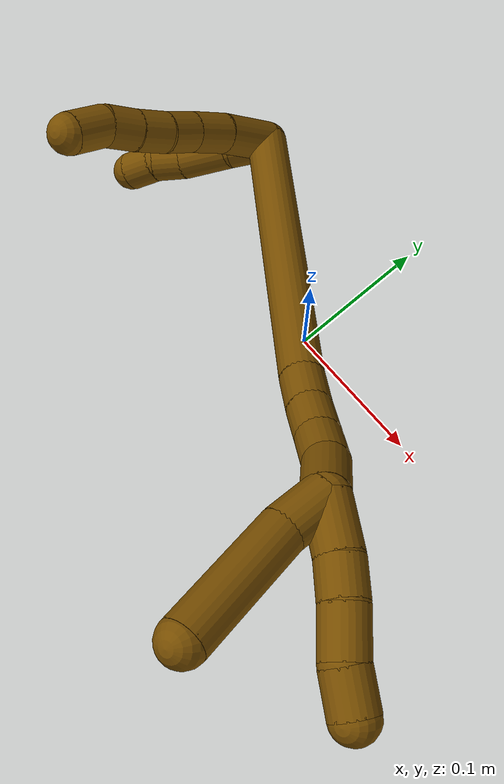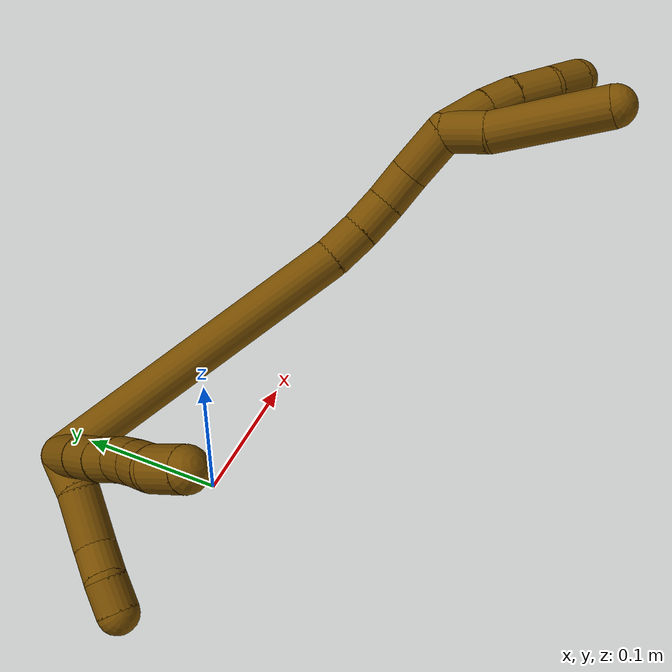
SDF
<sdf version="1.7">
 <world name="default">
  <model name="12">
   <static>0</static>
   <link name="12">
    <collision name="collision-cylinder-e_1_2_8">
     <pose>-0.005442 -0.000972 0.017811 0.054517 -0.296129 -0.008134</pose>
     <geometry><cylinder><radius>0.0125</radius><length>0.037299</length></cylinder></geometry>
     <surface>
      <friction><ode><mu>1.16</mu><mu2>1.16</mu2><slip1>0</slip1><slip2>0</slip2></ode></friction>
      <contact><ode><kp>1e+06</kp><kd>1</kd><max_vel>0</max_vel><min_depth>0.001</min_depth></ode></contact>
     </surface>
    </collision>
    <visual name="visual-cylinder-e_1_2_8">
     <pose>-0.005442 -0.000972 0.017811 0.054517 -0.296129 -0.008134</pose>
     <geometry><cylinder><radius>0.0125</radius><length>0.037299</length></cylinder></geometry>
     <material><ambient>0.466667 0.301961 0 1</ambient></material>
    </visual>
    <collision name="collision-cylinder-e_2_8_9">
     <pose>-0.014445 -0.003933 0.047606 0.164456 -0.285077 -0.023654</pose>
     <geometry><cylinder><radius>0.0125</radius><length>0.025316</length></cylinder></geometry>
     <surface>
      <friction><ode><mu>1.16</mu><mu2>1.16</mu2><slip1>0</slip1><slip2>0</slip2></ode></friction>
      <contact><ode><kp>1e+06</kp><kd>1</kd><max_vel>0</max_vel><min_depth>0.001</min_depth></ode></contact>
     </surface>
    </collision>
    <visual name="visual-cylinder-e_2_8_9">
     <pose>-0.014445 -0.003933 0.047606 0.164456 -0.285077 -0.023654</pose>
     <geometry><cylinder><radius>0.0125</radius><length>0.025316</length></cylinder></geometry>
     <material><ambient>0.466667 0.301961 0 1</ambient></material>
    </visual>
    <collision name="collision-cylinder-e_3_9_10">
     <pose>-0.020049 -0.007757 0.069635 0.180764 -0.197566 -0.017963</pose>
     <geometry><cylinder><radius>0.0125</radius><length>0.020828</length></cylinder></geometry>
     <surface>
      <friction><ode><mu>1.16</mu><mu2>1.16</mu2><slip1>0</slip1><slip2>0</slip2></ode></friction>
      <contact><ode><kp>1e+06</kp><kd>1</kd><max_vel>0</max_vel><min_depth>0.001</min_depth></ode></contact>
     </surface>
    </collision>
    <visual name="visual-cylinder-e_3_9_10">
     <pose>-0.020049 -0.007757 0.069635 0.180764 -0.197566 -0.017963</pose>
     <geometry><cylinder><radius>0.0125</radius><length>0.020828</length></cylinder></geometry>
     <material><ambient>0.466667 0.301961 0 1</ambient></material>
    </visual>
    <collision name="collision-cylinder-e_4_10_11">
     <pose>-0.025448 -0.011088 0.08951 0.150886 -0.325442 -0.024817</pose>
     <geometry><cylinder><radius>0.0125</radius><length>0.020987</length></cylinder></geometry>
     <surface>
      <friction><ode><mu>1.16</mu><mu2>1.16</mu2><slip1>0</slip1><slip2>0</slip2></ode></friction>
      <contact><ode><kp>1e+06</kp><kd>1</kd><max_vel>0</max_vel><min_depth>0.001</min_depth></ode></contact>
     </surface>
    </collision>
    <visual name="visual-cylinder-e_4_10_11">
     <pose>-0.025448 -0.011088 0.08951 0.150886 -0.325442 -0.024817</pose>
     <geometry><cylinder><radius>0.0125</radius><length>0.020987</length></cylinder></geometry>
     <material><ambient>0.466667 0.301961 0 1</ambient></material>
    </visual>
    <collision name="collision-cylinder-e_5_11_12">
     <pose>-0.032681 -0.013499 0.108935 0.095313 -0.382545 -0.01847</pose>
     <geometry><cylinder><radius>0.0125</radius><length>0.02078</length></cylinder></geometry>
     <surface>
      <friction><ode><mu>1.16</mu><mu2>1.16</mu2><slip1>0</slip1><slip2>0</slip2></ode></friction>
      <contact><ode><kp>1e+06</kp><kd>1</kd><max_vel>0</max_vel><min_depth>0.001</min_depth></ode></contact>
     </surface>
    </collision>
    <visual name="visual-cylinder-e_5_11_12">
     <pose>-0.032681 -0.013499 0.108935 0.095313 -0.382545 -0.01847</pose>
     <geometry><cylinder><radius>0.0125</radius><length>0.02078</length></cylinder></geometry>
     <material><ambient>0.466667 0.301961 0 1</ambient></material>
    </visual>
    <collision name="collision-cylinder-e_6_12_6">
     <pose>-0.038323 -0.018508 0.130096 0.340027 -0.142709 -0.024539</pose>
     <geometry><cylinder><radius>0.0125</radius><length>0.024789</length></cylinder></geometry>
     <surface>
      <friction><ode><mu>1.16</mu><mu2>1.16</mu2><slip1>0</slip1><slip2>0</slip2></ode></friction>
      <contact><ode><kp>1e+06</kp><kd>1</kd><max_vel>0</max_vel><min_depth>0.001</min_depth></ode></contact>
     </surface>
    </collision>
    <visual name="visual-cylinder-e_6_12_6">
     <pose>-0.038323 -0.018508 0.130096 0.340027 -0.142709 -0.024539</pose>
     <geometry><cylinder><radius>0.0125</radius><length>0.024789</length></cylinder></geometry>
     <material><ambient>0.466667 0.301961 0 1</ambient></material>
    </visual>
    <collision name="collision-cylinder-e_1_2_13">
     <pose>-0.009833 -0.006918 0.003625 1.08817 -0.899543 -0.568342</pose>
     <geometry><cylinder><radius>0.0125</radius><length>0.025116</length></cylinder></geometry>
     <surface>
      <friction><ode><mu>1.16</mu><mu2>1.16</mu2><slip1>0</slip1><slip2>0</slip2></ode></friction>
      <contact><ode><kp>1e+06</kp><kd>1</kd><max_vel>0</max_vel><min_depth>0.001</min_depth></ode></contact>
     </surface>
    </collision>
    <visual name="visual-cylinder-e_1_2_13">
     <pose>-0.009833 -0.006918 0.003625 1.08817 -0.899543 -0.568342</pose>
     <geometry><cylinder><radius>0.0125</radius><length>0.025116</length></cylinder></geometry>
     <material><ambient>0.466667 0.301961 0 1</ambient></material>
    </visual>
    <collision name="collision-cylinder-e_2_13_14">
     <pose>-0.033928 -0.023563 0.008073 1.48641 -0.970583 -0.902552</pose>
     <geometry><cylinder><radius>0.0125</radius><length>0.034565</length></cylinder></geometry>
     <surface>
      <friction><ode><mu>1.16</mu><mu2>1.16</mu2><slip1>0</slip1><slip2>0</slip2></ode></friction>
      <contact><ode><kp>1e+06</kp><kd>1</kd><max_vel>0</max_vel><min_depth>0.001</min_depth></ode></contact>
     </surface>
    </collision>
    <visual name="visual-cylinder-e_2_13_14">
     <pose>-0.033928 -0.023563 0.008073 1.48641 -0.970583 -0.902552</pose>
     <geometry><cylinder><radius>0.0125</radius><length>0.034565</length></cylinder></geometry>
     <material><ambient>0.466667 0.301961 0 1</ambient></material>
    </visual>
    <collision name="collision-cylinder-e_3_14_15">
     <pose>-0.056609 -0.037813 0.011924 0.980672 -0.996884 -0.565526</pose>
     <geometry><cylinder><radius>0.0125</radius><length>0.020051</length></cylinder></geometry>
     <surface>
      <friction><ode><mu>1.16</mu><mu2>1.16</mu2><slip1>0</slip1><slip2>0</slip2></ode></friction>
      <contact><ode><kp>1e+06</kp><kd>1</kd><max_vel>0</max_vel><min_depth>0.001</min_depth></ode></contact>
     </surface>
    </collision>
    <visual name="visual-cylinder-e_3_14_15">
     <pose>-0.056609 -0.037813 0.011924 0.980672 -0.996884 -0.565526</pose>
     <geometry><cylinder><radius>0.0125</radius><length>0.020051</length></cylinder></geometry>
     <material><ambient>0.466667 0.301961 0 1</ambient></material>
    </visual>
    <collision name="collision-cylinder-e_4_15_5">
     <pose>-0.07291 -0.0487 0.015213 1.53005 -0.891024 -0.859731</pose>
     <geometry><cylinder><radius>0.0125</radius><length>0.020269</length></cylinder></geometry>
     <surface>
      <friction><ode><mu>1.16</mu><mu2>1.16</mu2><slip1>0</slip1><slip2>0</slip2></ode></friction>
      <contact><ode><kp>1e+06</kp><kd>1</kd><max_vel>0</max_vel><min_depth>0.001</min_depth></ode></contact>
     </surface>
    </collision>
    <visual name="visual-cylinder-e_4_15_5">
     <pose>-0.07291 -0.0487 0.015213 1.53005 -0.891024 -0.859731</pose>
     <geometry><cylinder><radius>0.0125</radius><length>0.020269</length></cylinder></geometry>
     <material><ambient>0.466667 0.301961 0 1</ambient></material>
    </visual>
    <collision name="collision-cylinder-e_1_2_16">
     <pose>0.068339 -0.043954 0.056734 0.65915 0.760924 0.271917</pose>
     <geometry><cylinder><radius>0.0125</radius><length>0.1982</length></cylinder></geometry>
     <surface>
      <friction><ode><mu>1.16</mu><mu2>1.16</mu2><slip1>0</slip1><slip2>0</slip2></ode></friction>
      <contact><ode><kp>1e+06</kp><kd>1</kd><max_vel>0</max_vel><min_depth>0.001</min_depth></ode></contact>
     </surface>
    </collision>
    <visual name="visual-cylinder-e_1_2_16">
     <pose>0.068339 -0.043954 0.056734 0.65915 0.760924 0.271917</pose>
     <geometry><cylinder><radius>0.0125</radius><length>0.1982</length></cylinder></geometry>
     <material><ambient>0.466667 0.301961 0 1</ambient></material>
    </visual>
    <collision name="collision-cylinder-e_2_16_17">
     <pose>0.145187 -0.091668 0.120781 0.474887 0.802492 0.204634</pose>
     <geometry><cylinder><radius>0.0125</radius><length>0.023668</length></cylinder></geometry>
     <surface>
      <friction><ode><mu>1.16</mu><mu2>1.16</mu2><slip1>0</slip1><slip2>0</slip2></ode></friction>
      <contact><ode><kp>1e+06</kp><kd>1</kd><max_vel>0</max_vel><min_depth>0.001</min_depth></ode></contact>
     </surface>
    </collision>
    <visual name="visual-cylinder-e_2_16_17">
     <pose>0.145187 -0.091668 0.120781 0.474887 0.802492 0.204634</pose>
     <geometry><cylinder><radius>0.0125</radius><length>0.023668</length></cylinder></geometry>
     <material><ambient>0.466667 0.301961 0 1</ambient></material>
    </visual>
    <collision name="collision-cylinder-e_3_17_18">
     <pose>0.162024 -0.098083 0.135381 0.349408 0.820974 0.153331</pose>
     <geometry><cylinder><radius>0.0125</radius><length>0.022758</length></cylinder></geometry>
     <surface>
      <friction><ode><mu>1.16</mu><mu2>1.16</mu2><slip1>0</slip1><slip2>0</slip2></ode></friction>
      <contact><ode><kp>1e+06</kp><kd>1</kd><max_vel>0</max_vel><min_depth>0.001</min_depth></ode></contact>
     </surface>
    </collision>
    <visual name="visual-cylinder-e_3_17_18">
     <pose>0.162024 -0.098083 0.135381 0.349408 0.820974 0.153331</pose>
     <geometry><cylinder><radius>0.0125</radius><length>0.022758</length></cylinder></geometry>
     <material><ambient>0.466667 0.301961 0 1</ambient></material>
    </visual>
    <collision name="collision-cylinder-e_4_18_19">
     <pose>0.178196 -0.102359 0.150693 0.199307 0.764024 0.080294</pose>
     <geometry><cylinder><radius>0.0125</radius><length>0.02268</length></cylinder></geometry>
     <surface>
      <friction><ode><mu>1.16</mu><mu2>1.16</mu2><slip1>0</slip1><slip2>0</slip2></ode></friction>
      <contact><ode><kp>1e+06</kp><kd>1</kd><max_vel>0</max_vel><min_depth>0.001</min_depth></ode></contact>
     </surface>
    </collision>
    <visual name="visual-cylinder-e_4_18_19">
     <pose>0.178196 -0.102359 0.150693 0.199307 0.764024 0.080294</pose>
     <geometry><cylinder><radius>0.0125</radius><length>0.02268</length></cylinder></geometry>
     <material><ambient>0.466667 0.301961 0 1</ambient></material>
    </visual>
    <collision name="collision-cylinder-e_5_19_1">
     <pose>0.194485 -0.105283 0.172657 0.093185 0.542726 0.025944</pose>
     <geometry><cylinder><radius>0.0125</radius><length>0.032694</length></cylinder></geometry>
     <surface>
      <friction><ode><mu>1.16</mu><mu2>1.16</mu2><slip1>0</slip1><slip2>0</slip2></ode></friction>
      <contact><ode><kp>1e+06</kp><kd>1</kd><max_vel>0</max_vel><min_depth>0.001</min_depth></ode></contact>
     </surface>
    </collision>
    <visual name="visual-cylinder-e_5_19_1">
     <pose>0.194485 -0.105283 0.172657 0.093185 0.542726 0.025944</pose>
     <geometry><cylinder><radius>0.0125</radius><length>0.032694</length></cylinder></geometry>
     <material><ambient>0.466667 0.301961 0 1</ambient></material>
    </visual>
    <collision name="collision-cylinder-e_1_1_20">
     <pose>0.213889 -0.115204 0.192185 0.995285 0.817765 0.462363</pose>
     <geometry><cylinder><radius>0.0125</radius><length>0.030047</length></cylinder></geometry>
     <surface>
      <friction><ode><mu>1.16</mu><mu2>1.16</mu2><slip1>0</slip1><slip2>0</slip2></ode></friction>
      <contact><ode><kp>1e+06</kp><kd>1</kd><max_vel>0</max_vel><min_depth>0.001</min_depth></ode></contact>
     </surface>
    </collision>
    <visual name="visual-cylinder-e_1_1_20">
     <pose>0.213889 -0.115204 0.192185 0.995285 0.817765 0.462363</pose>
     <geometry><cylinder><radius>0.0125</radius><length>0.030047</length></cylinder></geometry>
     <material><ambient>0.466667 0.301961 0 1</ambient></material>
    </visual>
    <collision name="collision-cylinder-e_2_20_21">
     <pose>0.231531 -0.130613 0.202019 1.01241 0.695436 0.396587</pose>
     <geometry><cylinder><radius>0.0125</radius><length>0.020855</length></cylinder></geometry>
     <surface>
      <friction><ode><mu>1.16</mu><mu2>1.16</mu2><slip1>0</slip1><slip2>0</slip2></ode></friction>
      <contact><ode><kp>1e+06</kp><kd>1</kd><max_vel>0</max_vel><min_depth>0.001</min_depth></ode></contact>
     </surface>
    </collision>
    <visual name="visual-cylinder-e_2_20_21">
     <pose>0.231531 -0.130613 0.202019 1.01241 0.695436 0.396587</pose>
     <geometry><cylinder><radius>0.0125</radius><length>0.020855</length></cylinder></geometry>
     <material><ambient>0.466667 0.301961 0 1</ambient></material>
    </visual>
    <collision name="collision-cylinder-e_3_21_22">
     <pose>0.245518 -0.147076 0.211216 1.09733 0.591826 0.368481</pose>
     <geometry><cylinder><radius>0.0125</radius><length>0.026191</length></cylinder></geometry>
     <surface>
      <friction><ode><mu>1.16</mu><mu2>1.16</mu2><slip1>0</slip1><slip2>0</slip2></ode></friction>
      <contact><ode><kp>1e+06</kp><kd>1</kd><max_vel>0</max_vel><min_depth>0.001</min_depth></ode></contact>
     </surface>
    </collision>
    <visual name="visual-cylinder-e_3_21_22">
     <pose>0.245518 -0.147076 0.211216 1.09733 0.591826 0.368481</pose>
     <geometry><cylinder><radius>0.0125</radius><length>0.026191</length></cylinder></geometry>
     <material><ambient>0.466667 0.301961 0 1</ambient></material>
    </visual>
    <collision name="collision-cylinder-e_4_22_4">
     <pose>0.260395 -0.165156 0.217951 1.36229 0.722213 0.594123</pose>
     <geometry><cylinder><radius>0.0125</radius><length>0.022907</length></cylinder></geometry>
     <surface>
      <friction><ode><mu>1.16</mu><mu2>1.16</mu2><slip1>0</slip1><slip2>0</slip2></ode></friction>
      <contact><ode><kp>1e+06</kp><kd>1</kd><max_vel>0</max_vel><min_depth>0.001</min_depth></ode></contact>
     </surface>
    </collision>
    <visual name="visual-cylinder-e_4_22_4">
     <pose>0.260395 -0.165156 0.217951 1.36229 0.722213 0.594123</pose>
     <geometry><cylinder><radius>0.0125</radius><length>0.022907</length></cylinder></geometry>
     <material><ambient>0.466667 0.301961 0 1</ambient></material>
    </visual>
    <collision name="collision-cylinder-e_1_1_23">
     <pose>0.200793 -0.114642 0.197734 0.626147 -0.154035 -0.049953</pose>
     <geometry><cylinder><radius>0.0125</radius><length>0.027826</length></cylinder></geometry>
     <surface>
      <friction><ode><mu>1.16</mu><mu2>1.16</mu2><slip1>0</slip1><slip2>0</slip2></ode></friction>
      <contact><ode><kp>1e+06</kp><kd>1</kd><max_vel>0</max_vel><min_depth>0.001</min_depth></ode></contact>
     </surface>
    </collision>
    <visual name="visual-cylinder-e_1_1_23">
     <pose>0.200793 -0.114642 0.197734 0.626147 -0.154035 -0.049953</pose>
     <geometry><cylinder><radius>0.0125</radius><length>0.027826</length></cylinder></geometry>
     <material><ambient>0.466667 0.301961 0 1</ambient></material>
    </visual>
    <collision name="collision-cylinder-e_2_23_3">
     <pose>0.200231 -0.141068 0.239897 0.534591 0.043596 0.01194</pose>
     <geometry><cylinder><radius>0.0125</radius><length>0.072174</length></cylinder></geometry>
     <surface>
      <friction><ode><mu>1.16</mu><mu2>1.16</mu2><slip1>0</slip1><slip2>0</slip2></ode></friction>
      <contact><ode><kp>1e+06</kp><kd>1</kd><max_vel>0</max_vel><min_depth>0.001</min_depth></ode></contact>
     </surface>
    </collision>
    <visual name="visual-cylinder-e_2_23_3">
     <pose>0.200231 -0.141068 0.239897 0.534591 0.043596 0.01194</pose>
     <geometry><cylinder><radius>0.0125</radius><length>0.072174</length></cylinder></geometry>
     <material><ambient>0.466667 0.301961 0 1</ambient></material>
    </visual>
    <collision name="collision-sphere-3">
     <pose>0.201803 -0.159436 0.270919 0 -0 0</pose>
     <geometry><sphere><radius>0.0125</radius></sphere></geometry>
     <surface>
      <friction><ode><mu>1.16</mu><mu2>1.16</mu2><slip1>0</slip1><slip2>0</slip2></ode></friction>
      <contact><ode><kp>1e+06</kp><kd>1</kd><max_vel>0</max_vel><min_depth>0.001</min_depth></ode></contact>
     </surface>
    </collision>
    <visual name="visual-sphere-3">
     <pose>0.201803 -0.159436 0.270919 0 -0 0</pose>
     <geometry><sphere><radius>0.0125</radius></sphere></geometry>
     <material><ambient>0.466667 0.301961 0 1</ambient></material>
    </visual>
    <collision name="collision-sphere-23">
     <pose>0.198658 -0.122699 0.208874 0 -0 0</pose>
     <geometry><sphere><radius>0.0125</radius></sphere></geometry>
     <surface>
      <friction><ode><mu>1.16</mu><mu2>1.16</mu2><slip1>0</slip1><slip2>0</slip2></ode></friction>
      <contact><ode><kp>1e+06</kp><kd>1</kd><max_vel>0</max_vel><min_depth>0.001</min_depth></ode></contact>
     </surface>
    </collision>
    <visual name="visual-sphere-23">
     <pose>0.198658 -0.122699 0.208874 0 -0 0</pose>
     <geometry><sphere><radius>0.0125</radius></sphere></geometry>
     <material><ambient>0.466667 0.301961 0 1</ambient></material>
    </visual>
    <collision name="collision-sphere-4">
     <pose>0.267966 -0.173564 0.21973 0 -0 0</pose>
     <geometry><sphere><radius>0.0125</radius></sphere></geometry>
     <surface>
      <friction><ode><mu>1.16</mu><mu2>1.16</mu2><slip1>0</slip1><slip2>0</slip2></ode></friction>
      <contact><ode><kp>1e+06</kp><kd>1</kd><max_vel>0</max_vel><min_depth>0.001</min_depth></ode></contact>
     </surface>
    </collision>
    <visual name="visual-sphere-4">
     <pose>0.267966 -0.173564 0.21973 0 -0 0</pose>
     <geometry><sphere><radius>0.0125</radius></sphere></geometry>
     <material><ambient>0.466667 0.301961 0 1</ambient></material>
    </visual>
    <collision name="collision-sphere-22">
     <pose>0.252823 -0.156748 0.216172 0 -0 0</pose>
     <geometry><sphere><radius>0.0125</radius></sphere></geometry>
     <surface>
      <friction><ode><mu>1.16</mu><mu2>1.16</mu2><slip1>0</slip1><slip2>0</slip2></ode></friction>
      <contact><ode><kp>1e+06</kp><kd>1</kd><max_vel>0</max_vel><min_depth>0.001</min_depth></ode></contact>
     </surface>
    </collision>
    <visual name="visual-sphere-22">
     <pose>0.252823 -0.156748 0.216172 0 -0 0</pose>
     <geometry><sphere><radius>0.0125</radius></sphere></geometry>
     <material><ambient>0.466667 0.301961 0 1</ambient></material>
    </visual>
    <collision name="collision-sphere-21">
     <pose>0.238212 -0.137403 0.206261 0 -0 0</pose>
     <geometry><sphere><radius>0.0125</radius></sphere></geometry>
     <surface>
      <friction><ode><mu>1.16</mu><mu2>1.16</mu2><slip1>0</slip1><slip2>0</slip2></ode></friction>
      <contact><ode><kp>1e+06</kp><kd>1</kd><max_vel>0</max_vel><min_depth>0.001</min_depth></ode></contact>
     </surface>
    </collision>
    <visual name="visual-sphere-21">
     <pose>0.238212 -0.137403 0.206261 0 -0 0</pose>
     <geometry><sphere><radius>0.0125</radius></sphere></geometry>
     <material><ambient>0.466667 0.301961 0 1</ambient></material>
    </visual>
    <collision name="collision-sphere-20">
     <pose>0.22485 -0.123823 0.197777 0 -0 0</pose>
     <geometry><sphere><radius>0.0125</radius></sphere></geometry>
     <surface>
      <friction><ode><mu>1.16</mu><mu2>1.16</mu2><slip1>0</slip1><slip2>0</slip2></ode></friction>
      <contact><ode><kp>1e+06</kp><kd>1</kd><max_vel>0</max_vel><min_depth>0.001</min_depth></ode></contact>
     </surface>
    </collision>
    <visual name="visual-sphere-20">
     <pose>0.22485 -0.123823 0.197777 0 -0 0</pose>
     <geometry><sphere><radius>0.0125</radius></sphere></geometry>
     <material><ambient>0.466667 0.301961 0 1</ambient></material>
    </visual>
    <collision name="collision-sphere-12">
     <pose>-0.03656 -0.014417 0.11853 0 -0 0</pose>
     <geometry><sphere><radius>0.0125</radius></sphere></geometry>
     <surface>
      <friction><ode><mu>1.16</mu><mu2>1.16</mu2><slip1>0</slip1><slip2>0</slip2></ode></friction>
      <contact><ode><kp>1e+06</kp><kd>1</kd><max_vel>0</max_vel><min_depth>0.001</min_depth></ode></contact>
     </surface>
    </collision>
    <visual name="visual-sphere-12">
     <pose>-0.03656 -0.014417 0.11853 0 -0 0</pose>
     <geometry><sphere><radius>0.0125</radius></sphere></geometry>
     <material><ambient>0.466667 0.301961 0 1</ambient></material>
    </visual>
    <collision name="collision-sphere-11">
     <pose>-0.028803 -0.012582 0.09934 0 -0 0</pose>
     <geometry><sphere><radius>0.0125</radius></sphere></geometry>
     <surface>
      <friction><ode><mu>1.16</mu><mu2>1.16</mu2><slip1>0</slip1><slip2>0</slip2></ode></friction>
      <contact><ode><kp>1e+06</kp><kd>1</kd><max_vel>0</max_vel><min_depth>0.001</min_depth></ode></contact>
     </surface>
    </collision>
    <visual name="visual-sphere-11">
     <pose>-0.028803 -0.012582 0.09934 0 -0 0</pose>
     <geometry><sphere><radius>0.0125</radius></sphere></geometry>
     <material><ambient>0.466667 0.301961 0 1</ambient></material>
    </visual>
    <collision name="collision-sphere-10">
     <pose>-0.022093 -0.009593 0.07968 0 -0 0</pose>
     <geometry><sphere><radius>0.0125</radius></sphere></geometry>
     <surface>
      <friction><ode><mu>1.16</mu><mu2>1.16</mu2><slip1>0</slip1><slip2>0</slip2></ode></friction>
      <contact><ode><kp>1e+06</kp><kd>1</kd><max_vel>0</max_vel><min_depth>0.001</min_depth></ode></contact>
     </surface>
    </collision>
    <visual name="visual-sphere-10">
     <pose>-0.022093 -0.009593 0.07968 0 -0 0</pose>
     <geometry><sphere><radius>0.0125</radius></sphere></geometry>
     <material><ambient>0.466667 0.301961 0 1</ambient></material>
    </visual>
    <collision name="collision-sphere-9">
     <pose>-0.018004 -0.005921 0.05959 0 -0 0</pose>
     <geometry><sphere><radius>0.0125</radius></sphere></geometry>
     <surface>
      <friction><ode><mu>1.16</mu><mu2>1.16</mu2><slip1>0</slip1><slip2>0</slip2></ode></friction>
      <contact><ode><kp>1e+06</kp><kd>1</kd><max_vel>0</max_vel><min_depth>0.001</min_depth></ode></contact>
     </surface>
    </collision>
    <visual name="visual-sphere-9">
     <pose>-0.018004 -0.005921 0.05959 0 -0 0</pose>
     <geometry><sphere><radius>0.0125</radius></sphere></geometry>
     <material><ambient>0.466667 0.301961 0 1</ambient></material>
    </visual>
    <collision name="collision-sphere-2">
     <geometry><sphere><radius>0.0125</radius></sphere></geometry>
     <surface>
      <friction><ode><mu>1.16</mu><mu2>1.16</mu2><slip1>0</slip1><slip2>0</slip2></ode></friction>
      <contact><ode><kp>1e+06</kp><kd>1</kd><max_vel>0</max_vel><min_depth>0.001</min_depth></ode></contact>
     </surface>
    </collision>
    <visual name="visual-sphere-2">
     <geometry><sphere><radius>0.0125</radius></sphere></geometry>
     <material><ambient>0.466667 0.301961 0 1</ambient></material>
    </visual>
    <collision name="collision-sphere-19">
     <pose>0.186042 -0.103981 0.15872 0 -0 0</pose>
     <geometry><sphere><radius>0.0125</radius></sphere></geometry>
     <surface>
      <friction><ode><mu>1.16</mu><mu2>1.16</mu2><slip1>0</slip1><slip2>0</slip2></ode></friction>
      <contact><ode><kp>1e+06</kp><kd>1</kd><max_vel>0</max_vel><min_depth>0.001</min_depth></ode></contact>
     </surface>
    </collision>
    <visual name="visual-sphere-19">
     <pose>0.186042 -0.103981 0.15872 0 -0 0</pose>
     <geometry><sphere><radius>0.0125</radius></sphere></geometry>
     <material><ambient>0.466667 0.301961 0 1</ambient></material>
    </visual>
    <collision name="collision-sphere-8">
     <pose>-0.010885 -0.001944 0.035623 0 -0 0</pose>
     <geometry><sphere><radius>0.0125</radius></sphere></geometry>
     <surface>
      <friction><ode><mu>1.16</mu><mu2>1.16</mu2><slip1>0</slip1><slip2>0</slip2></ode></friction>
      <contact><ode><kp>1e+06</kp><kd>1</kd><max_vel>0</max_vel><min_depth>0.001</min_depth></ode></contact>
     </surface>
    </collision>
    <visual name="visual-sphere-8">
     <pose>-0.010885 -0.001944 0.035623 0 -0 0</pose>
     <geometry><sphere><radius>0.0125</radius></sphere></geometry>
     <material><ambient>0.466667 0.301961 0 1</ambient></material>
    </visual>
    <collision name="collision-sphere-6">
     <pose>-0.040085 -0.0226 0.141662 0 -0 0</pose>
     <geometry><sphere><radius>0.0125</radius></sphere></geometry>
     <surface>
      <friction><ode><mu>1.16</mu><mu2>1.16</mu2><slip1>0</slip1><slip2>0</slip2></ode></friction>
      <contact><ode><kp>1e+06</kp><kd>1</kd><max_vel>0</max_vel><min_depth>0.001</min_depth></ode></contact>
     </surface>
    </collision>
    <visual name="visual-sphere-6">
     <pose>-0.040085 -0.0226 0.141662 0 -0 0</pose>
     <geometry><sphere><radius>0.0125</radius></sphere></geometry>
     <material><ambient>0.466667 0.301961 0 1</ambient></material>
    </visual>
    <collision name="collision-sphere-13">
     <pose>-0.019667 -0.013837 0.00725 0 -0 0</pose>
     <geometry><sphere><radius>0.0125</radius></sphere></geometry>
     <surface>
      <friction><ode><mu>1.16</mu><mu2>1.16</mu2><slip1>0</slip1><slip2>0</slip2></ode></friction>
      <contact><ode><kp>1e+06</kp><kd>1</kd><max_vel>0</max_vel><min_depth>0.001</min_depth></ode></contact>
     </surface>
    </collision>
    <visual name="visual-sphere-13">
     <pose>-0.019667 -0.013837 0.00725 0 -0 0</pose>
     <geometry><sphere><radius>0.0125</radius></sphere></geometry>
     <material><ambient>0.466667 0.301961 0 1</ambient></material>
    </visual>
    <collision name="collision-sphere-14">
     <pose>-0.04819 -0.03329 0.008895 0 -0 0</pose>
     <geometry><sphere><radius>0.0125</radius></sphere></geometry>
     <surface>
      <friction><ode><mu>1.16</mu><mu2>1.16</mu2><slip1>0</slip1><slip2>0</slip2></ode></friction>
      <contact><ode><kp>1e+06</kp><kd>1</kd><max_vel>0</max_vel><min_depth>0.001</min_depth></ode></contact>
     </surface>
    </collision>
    <visual name="visual-sphere-14">
     <pose>-0.04819 -0.03329 0.008895 0 -0 0</pose>
     <geometry><sphere><radius>0.0125</radius></sphere></geometry>
     <material><ambient>0.466667 0.301961 0 1</ambient></material>
    </visual>
    <collision name="collision-sphere-15">
     <pose>-0.065028 -0.042335 0.014953 0 -0 0</pose>
     <geometry><sphere><radius>0.0125</radius></sphere></geometry>
     <surface>
      <friction><ode><mu>1.16</mu><mu2>1.16</mu2><slip1>0</slip1><slip2>0</slip2></ode></friction>
      <contact><ode><kp>1e+06</kp><kd>1</kd><max_vel>0</max_vel><min_depth>0.001</min_depth></ode></contact>
     </surface>
    </collision>
    <visual name="visual-sphere-15">
     <pose>-0.065028 -0.042335 0.014953 0 -0 0</pose>
     <geometry><sphere><radius>0.0125</radius></sphere></geometry>
     <material><ambient>0.466667 0.301961 0 1</ambient></material>
    </visual>
    <collision name="collision-sphere-5">
     <pose>-0.080792 -0.055066 0.015472 0 -0 0</pose>
     <geometry><sphere><radius>0.0125</radius></sphere></geometry>
     <surface>
      <friction><ode><mu>1.16</mu><mu2>1.16</mu2><slip1>0</slip1><slip2>0</slip2></ode></friction>
      <contact><ode><kp>1e+06</kp><kd>1</kd><max_vel>0</max_vel><min_depth>0.001</min_depth></ode></contact>
     </surface>
    </collision>
    <visual name="visual-sphere-5">
     <pose>-0.080792 -0.055066 0.015472 0 -0 0</pose>
     <geometry><sphere><radius>0.0125</radius></sphere></geometry>
     <material><ambient>0.466667 0.301961 0 1</ambient></material>
    </visual>
    <collision name="collision-sphere-16">
     <pose>0.136677 -0.087908 0.113468 0 -0 0</pose>
     <geometry><sphere><radius>0.0125</radius></sphere></geometry>
     <surface>
      <friction><ode><mu>1.16</mu><mu2>1.16</mu2><slip1>0</slip1><slip2>0</slip2></ode></friction>
      <contact><ode><kp>1e+06</kp><kd>1</kd><max_vel>0</max_vel><min_depth>0.001</min_depth></ode></contact>
     </surface>
    </collision>
    <visual name="visual-sphere-16">
     <pose>0.136677 -0.087908 0.113468 0 -0 0</pose>
     <geometry><sphere><radius>0.0125</radius></sphere></geometry>
     <material><ambient>0.466667 0.301961 0 1</ambient></material>
    </visual>
    <collision name="collision-sphere-17">
     <pose>0.153697 -0.095429 0.128095 0 -0 0</pose>
     <geometry><sphere><radius>0.0125</radius></sphere></geometry>
     <surface>
      <friction><ode><mu>1.16</mu><mu2>1.16</mu2><slip1>0</slip1><slip2>0</slip2></ode></friction>
      <contact><ode><kp>1e+06</kp><kd>1</kd><max_vel>0</max_vel><min_depth>0.001</min_depth></ode></contact>
     </surface>
    </collision>
    <visual name="visual-sphere-17">
     <pose>0.153697 -0.095429 0.128095 0 -0 0</pose>
     <geometry><sphere><radius>0.0125</radius></sphere></geometry>
     <material><ambient>0.466667 0.301961 0 1</ambient></material>
    </visual>
    <collision name="collision-sphere-18">
     <pose>0.170351 -0.100738 0.142667 0 -0 0</pose>
     <geometry><sphere><radius>0.0125</radius></sphere></geometry>
     <surface>
      <friction><ode><mu>1.16</mu><mu2>1.16</mu2><slip1>0</slip1><slip2>0</slip2></ode></friction>
      <contact><ode><kp>1e+06</kp><kd>1</kd><max_vel>0</max_vel><min_depth>0.001</min_depth></ode></contact>
     </surface>
    </collision>
    <visual name="visual-sphere-18">
     <pose>0.170351 -0.100738 0.142667 0 -0 0</pose>
     <geometry><sphere><radius>0.0125</radius></sphere></geometry>
     <material><ambient>0.466667 0.301961 0 1</ambient></material>
    </visual>
    <collision name="collision-sphere-1">
     <pose>0.202927 -0.106586 0.186594 0 -0 0</pose>
     <geometry><sphere><radius>0.0125</radius></sphere></geometry>
     <surface>
      <friction><ode><mu>1.16</mu><mu2>1.16</mu2><slip1>0</slip1><slip2>0</slip2></ode></friction>
      <contact><ode><kp>1e+06</kp><kd>1</kd><max_vel>0</max_vel><min_depth>0.001</min_depth></ode></contact>
     </surface>
    </collision>
    <visual name="visual-sphere-1">
     <pose>0.202927 -0.106586 0.186594 0 -0 0</pose>
     <geometry><sphere><radius>0.0125</radius></sphere></geometry>
     <material><ambient>0.466667 0.301961 0 1</ambient></material>
    </visual>
    <inertial>
     <pose>0.090101 -0.066763 0.10824 0 -0 0</pose>
     <mass>0.75</mass>
     <inertia>
      <ixx>0.000666</ixx>
      <ixy>0</ixy>
      <ixz>0</ixz>
      <iyy>0.000748</iyy>
      <iyz>0</iyz>
      <izz>-9.2e-05</izz>
     </inertia>
    </inertial>
   </link>
   <pose>-0.091989 0.043464 0.111375 0.625126 -0.258085 0.232559</pose>
  </model>
 </world>
</sdf>
